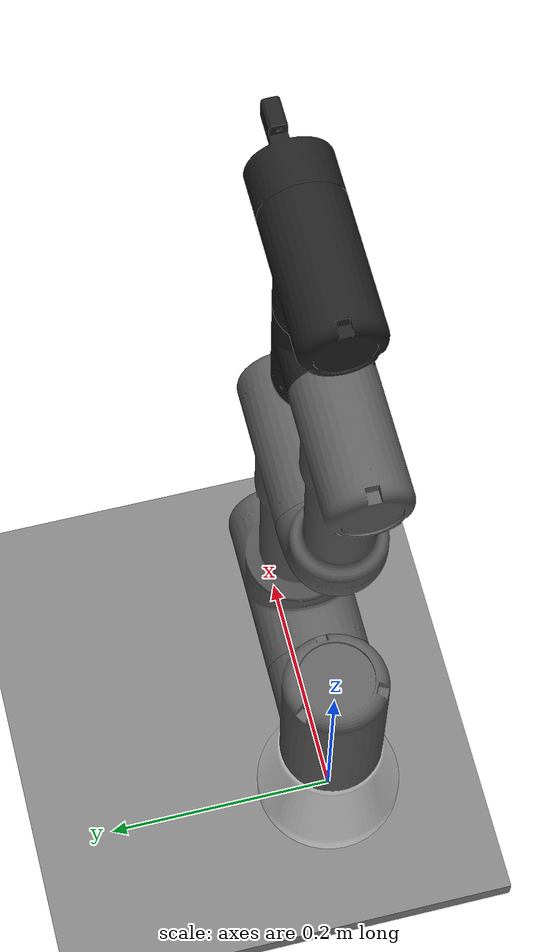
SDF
<?xml version="1.0" ?>
<sdf version='1.7'>
  <world name='world_demo'>
    <physics name="1ms" type="ode">
      <max_step_size>0.001</max_step_size>
      <real_time_factor>1.0</real_time_factor>
    </physics>
    <plugin
      filename="gz-sim-physics-system"
      name="gz::sim::systems::Physics">
    </plugin>
    <plugin
      filename="gz-sim-user-commands-system"
      name="gz::sim::systems::UserCommands">
    </plugin>
    <plugin
      filename="gz-sim-scene-broadcaster-system"
      name="gz::sim::systems::SceneBroadcaster">
    </plugin>

    <gui fullscreen="0">

      <!-- 3D scene -->
      <plugin filename="MinimalScene" name="3D View">
        <gz-gui>
          <title>3D View</title>
          <property type="bool" key="showTitleBar">false</property>
          <property type="string" key="state">docked</property>
        </gz-gui>

        <engine>ogre2</engine>
        <scene>scene</scene>
        <ambient_light>0.5 0.5 0.5</ambient_light>
        <background_color>0.8 0.8 0.8</background_color>
        <camera_pose>-4.0 -4.0 2.5 0 0.4 0.8</camera_pose>
        <camera_clip>
          <near>0.01</near>
          <far>5000</far>
        </camera_clip>
      </plugin>
      <plugin filename="GzSceneManager" name="Scene Manager">
        <gz-gui>
          <property key="resizable" type="bool">false</property>
          <property key="width" type="double">5</property>
          <property key="height" type="double">5</property>
          <property key="state" type="string">floating</property>
          <property key="showTitleBar" type="bool">false</property>
        </gz-gui>
      </plugin>

      <!-- World control -->
      <plugin filename="WorldControl" name="World control">
        <gz-gui>
          <title>World control</title>
          <property type="bool" key="showTitleBar">false</property>
          <property type="bool" key="resizable">false</property>
          <property type="double" key="height">72</property>
          <property type="double" key="width">121</property>
          <property type="double" key="z">1</property>

          <property type="string" key="state">floating</property>
          <anchors target="3D View">
          <line own="left" target="left"/>
          <line own="bottom" target="bottom"/>
          </anchors>
        </gz-gui>

        <play_pause>true</play_pause>
        <step>true</step>
        <start_paused>false</start_paused>
        <service>/world/world_demo/control</service>
        <stats_topic>/world/world_demo/stats</stats_topic>
      </plugin>

      <!-- World statistics -->
      <plugin filename="WorldStats" name="World stats">
        <gz-gui>
          <title>World stats</title>
          <property type="bool" key="showTitleBar">false</property>
          <property type="bool" key="resizable">false</property>
          <property type="double" key="height">110</property>
          <property type="double" key="width">290</property>
          <property type="double" key="z">1</property>

          <property type="string" key="state">floating</property>
          <anchors target="3D View">
          <line own="right" target="right"/>
          <line own="bottom" target="bottom"/>
          </anchors>
        </gz-gui>
        <sim_time>true</sim_time>
        <real_time>true</real_time>
        <real_time_factor>true</real_time_factor>
        <iterations>true</iterations>
        <topic>/world/world_demo/stats</topic>

      </plugin>

      <!-- Toolbar (required for camera controls) -->
      <plugin filename="InteractiveViewControl" name="View Angle">
        <gz-gui>
          <title>View Angle</title>
          <property type="bool" key="showTitleBar">false</property>
          <property type="string" key="state">docked</property>
        </gz-gui>
      </plugin>

      <!-- Display Transform Control Toolbar -->
      <plugin filename="TransformControl" name="Transform Control">
        <gz-gui>
          <property type="bool" key="showTitleBar">false</property>
         <property type="string" key="state">docked</property>
        </gz-gui>
      </plugin>

      <!-- Entity tree -->
      <plugin filename="EntityTree" name="Entity tree">
      </plugin>

      <!--using keyboard to control arm-->
      <plugin filename="KeyPublisher" name="Key Publisher"/>
    </gui>

    <!--Light-->
    <light type="directional" name="sun">
      <cast_shadows>true</cast_shadows>
      <pose>0 0 10 0 0 0</pose>
      <diffuse>0.8 0.8 0.8 1</diffuse>
      <specular>0.2 0.2 0.2 1</specular>
      <attenuation>
        <range>1000</range>
        <constant>0.9</constant>
        <linear>0.01</linear>
        <quadratic>0.001</quadratic>
      </attenuation>
      <direction>-0.5 0.1 -0.9</direction>
    </light>

    <!--Build a ground plane-->
    <model name='ground_plane'>
      <static>true</static>
      <pose>0 0 -0.01 0 0 0</pose> <link name='link'>
        <collision name='collision'>
          <geometry>
             <box>
              <size>20 20 0.02</size> </box>
          </geometry>
        </collision>
        <visual name='visual'>
          <geometry>
            <box>
              <size>20 20 0.02</size>
            </box>
          </geometry>
          <material>
            <ambient>0.5 0.5 0.5 1</ambient>
            <diffuse>0.5 0.5 0.5 1</diffuse>
          </material>
         </visual>
      </link>
    </model>

      <!--Robot itself-->
    <model name='UR3_Assembly_URDF'>

	    <joint name='fixed_base_joint' type='fixed'> <!--double check this joint-->
        <pose relative_to='__model__'>0 0 0 0 0 0</pose>
        <parent>world</parent>
        <child>base_link</child>
      </joint>

      <link name='base_link'>
        <inertial>
          <pose>0 -4.4408920985006301e-16 0.047576249398130099 0 0 0</pose>
          <mass>2.6514504391646798</mass>
          <inertia>
            <ixx>0.00437179269564763</ixx>
            <ixy>-3.85185988877447e-34</ixy>
            <ixz>-5.8778619151101097e-23</ixz>
            <iyy>0.00437179269564763</iyy>
            <iyz>3.8514866752464201e-19</iyz>
            <izz>0.0043848087297314103</izz>
          </inertia>
        </inertial>
        <collision name='base_link_collision'>
          <pose>0 0 0 0 0 0</pose>
          <geometry>
            <mesh>
              <scale>1 1 1</scale>
              <uri>package:///home/user/car_spraying_ws/src/car_spraying_robot/meshes/base_link.stl</uri>
            </mesh>
          </geometry>
        </collision>
        <visual name='base_link_visual'>
          <pose>0 0 0 0 0 0</pose>
          <geometry>
            <mesh>
              <scale>1 1 1</scale>
              <uri>package:///home/user/car_spraying_ws/src/car_spraying_robot/meshes/base_link.stl</uri>
            </mesh>
          </geometry>
          <material>
            <diffuse>1 1 1 1</diffuse>
            <ambient>1 1 1 1</ambient>
          </material>
        </visual>
      </link>
      <joint name='joint_0' type='revolute'>
        <pose relative_to='base_link'>0 0 0.10580000000000001 0 0 0</pose>
        <parent>base_link</parent>
        <child>link_1</child>
        <axis>
          <xyz>0 0 1</xyz>
          <limit>
            <lower>-3.14</lower>
            <upper>3.14</upper>
            <effort>35</effort>
            <velocity>1.5</velocity>
          </limit>
          <dynamics>
            <spring_reference>0</spring_reference>
            <spring_stiffness>0</spring_stiffness>
          </dynamics>
        </axis>
      </joint>
      <plugin
     name="gz::sim::systems::JointPositionController"
     filename="gz-sim-joint-position-controller-system">
      <!-- gz-sim-joint-position-controller-system handles:
        Topic Subscriptions, PID, Motion Control  -->
        <joint_name>joint_0</joint_name>
        <topic>/joint_0/position_cmd</topic>
        <p_gain>2000</p_gain>
	      <i_gain>0.1</i_gain>
	      <d_gain>50</d_gain>
      </plugin>

      <link name='link_1'>
        <pose relative_to='joint_0'>0 0 0 0 0 0</pose>
        <inertial>
          <pose>0.0051135862154434398 -4.4893697648262804e-09 0.063179880887965001 0 0 0</pose>
          <mass>0.80599855297885203</mass>
          <inertia>
            <ixx>0.0013206547966630299</ixx>
            <ixy>4.4061962049193298e-10</ixy>
            <ixz>-1.7219218437347999e-05</ixz>
            <iyy>0.00142111571223347</iyy>
            <iyz>1.2940043194443099e-10</iyz>
            <izz>0.00096650730830554095</izz>
          </inertia>
        </inertial>
        <collision name='link_1_collision'>
          <pose>0 0 0 0 0 0</pose>
          <geometry>
            <mesh>
              <scale>1 1 1</scale>
              <uri>package:///home/user/car_spraying_ws/src/car_spraying_robot/meshes/link_1.stl</uri>
            </mesh>
          </geometry>
        </collision>
        <visual name='link_1_visual'>
          <pose>0 0 0 0 0 0</pose>
          <geometry>
            <mesh>
              <scale>1 1 1</scale>
              <uri>package:///home/user/car_spraying_ws/src/car_spraying_robot/meshes/link_1.stl</uri>
            </mesh>
          </geometry>
          <material>
            <diffuse>0.372549027 0.372549027 0.372549027 1</diffuse>
            <ambient>0.372549027 0.372549027 0.372549027 1</ambient>
          </material>
        </visual>
      </link>
      <joint name='joint_1' type='revolute'>
        <pose relative_to='link_1'>0.055000000000000597 0 0.065999999999999906 1.5707963267949003 5.5511151231257827e-17 -1.5707963267949003</pose>
        <parent>link_1</parent>
        <child>link_2</child>
        <axis>
          <xyz>0 0 1</xyz>
          <limit>
            <lower>-3.14</lower>
            <upper>3.14</upper>
            <effort>35</effort>
            <velocity>1.5</velocity>
          </limit>
          <dynamics>
            <spring_reference>0</spring_reference>
            <spring_stiffness>0</spring_stiffness>
          </dynamics>
        </axis>
      </joint>

      <plugin
    name="gz::sim::systems::JointPositionController"
    filename="gz-sim-joint-position-controller-system">
        <joint_name>joint_1</joint_name>
        <topic>/joint_1/position_cmd</topic>
        <p_gain>2000</p_gain>
	      <i_gain>0.1</i_gain>
	      <d_gain>50</d_gain>
      </plugin>

      <link name='link_2'>
        <pose relative_to='joint_1'>0 0 0 0 0 0</pose>
        <inertial>
          <pose>4.25462332032112e-10 0.112619000509759 -0.069311980854205799 0 0 0</pose>
          <mass>2.8455664040750701</mass>
          <inertia>
            <ixx>0.0058537691504215996</ixx>
            <ixy>6.5781848149650896e-10</ixy>
            <ixz>-6.7615934400463402e-11</ixz>
            <iyy>0.0029568682326097401</iyy>
            <iyz>2.1932095980722101e-05</iyz>
            <izz>0.0050912983881171402</izz>
          </inertia>
        </inertial>
        <collision name='link_2_collision'>
          <pose>0 0 0 0 0 0</pose>
          <geometry>
            <mesh>
              <scale>1 1 1</scale>
              <uri>package:///home/user/car_spraying_ws/src/car_spraying_robot/meshes/link_2.stl</uri>
            </mesh>
          </geometry>
        </collision>
        <visual name='link_2_visual'>
          <pose>0 0 0 0 0 0</pose>
          <geometry>
            <mesh>
              <scale>1 1 1</scale>
              <uri>package:///home/user/car_spraying_ws/src/car_spraying_robot/meshes/link_2.stl</uri>
            </mesh>
          </geometry>
          <material>
            <diffuse>0.372549027 0.372549027 0.372549027 1</diffuse>
            <ambient>0.372549027 0.372549027 0.372549027 1</ambient>
          </material>
        </visual>
      </link>
      <joint name='joint_2' type='revolute'>
        <pose relative_to='link_2'>0 0.255 -0.015999999999999601 0 0 1.5707963267949003</pose>
        <parent>link_2</parent>
        <child>link_3</child>
        <axis>
          <xyz>0 0 1</xyz>
          <limit>
            <lower>-3.14</lower>
            <upper>3.14</upper>
            <effort>10</effort>
            <velocity>2</velocity>
          </limit>
          <dynamics>
            <spring_reference>0</spring_reference>
            <spring_stiffness>0</spring_stiffness>
          </dynamics>
        </axis>
      </joint>

      <plugin
    name="gz::sim::systems::JointPositionController"
    filename="gz-sim-joint-position-controller-system">
        <joint_name>joint_2</joint_name>
        <topic>/joint_2/position_cmd</topic>
        <p_gain>2000</p_gain>
	      <i_gain>0.1</i_gain>
	      <d_gain>50</d_gain>
      </plugin>

      <link name='link_3'>
        <pose relative_to='joint_2'>0 0 0 0 0 0</pose>
        <inertial>
          <pose>0.115582187515874 3.7597396307376097e-09 0.047877780898351902 0 0 0</pose>
          <mass>1.5490639003480999</mass>
          <inertia>
            <ixx>0.00090639954169275804</ixx>
            <ixy>5.9464801384745095e-10</ixy>
            <ixz>-5.8943171541064503e-05</ixz>
            <iyy>0.0023187378831417702</iyy>
            <iyz>1.8360356982654398e-11</iyz>
            <izz>0.002197605373301</izz>
          </inertia>
        </inertial>
        <collision name='link_3_collision'>
          <pose>0 0 0 0 0 0</pose>
          <geometry>
            <mesh>
              <scale>1 1 1</scale>
              <uri>package:///home/user/car_spraying_ws/src/car_spraying_robot/meshes/link_3.stl</uri>
            </mesh>
          </geometry>
        </collision>
        <visual name='link_3_visual'>
          <pose>0 0 0 0 0 0</pose>
          <geometry>
            <mesh>
              <scale>1 1 1</scale>
              <uri>package:///home/user/car_spraying_ws/src/car_spraying_robot/meshes/link_3.stl</uri>
            </mesh>
          </geometry>
          <material>
            <diffuse>0.372549027 0.372549027 0.372549027 1</diffuse>
            <ambient>0.372549027 0.372549027 0.372549027 1</ambient>
          </material>
        </visual>
      </link>
      <joint name='joint_3' type='revolute'>
        <pose relative_to='link_3'>0.22450000000000001 0 0.0070000000000001198 -3.14159265358979 0 0</pose>
        <parent>link_3</parent>
        <child>link_4</child>
        <axis>
          <xyz>0 0 1</xyz>
          <limit>
            <lower>-3.14</lower>
            <upper>3.14</upper>
            <effort>10</effort>
            <velocity>2</velocity>
          </limit>
          <dynamics>
            <spring_reference>0</spring_reference>
            <spring_stiffness>0</spring_stiffness>
          </dynamics>
        </axis>
      </joint>

      <plugin
    name="gz::sim::systems::JointPositionController"
    filename="gz-sim-joint-position-controller-system">
        <joint_name>joint_3</joint_name>
        <topic>/joint_3/position_cmd</topic>
        <p_gain>2000</p_gain>
	      <i_gain>0.1</i_gain>
	      <d_gain>50</d_gain>
      </plugin>

      <link name='link_4'>
        <pose relative_to='joint_3'>0 0 0 0 0 0</pose>
        <inertial>
          <pose>-0.00250614919525627 1.9986776678138102e-09 0.036195883903732601 0 0 0</pose>
          <mass>0.30592412248425099</mass>
          <inertia>
            <ixx>0.00019256180376239399</ixx>
            <ixy>2.03197911773492e-11</ixy>
            <ixz>1.2865620793401399e-06</ixz>
            <iyy>0.00028193000710771601</iyy>
            <iyz>6.7479130275890594e-11</iyz>
            <izz>0.000261214129591347</izz>
          </inertia>
        </inertial>
        <collision name='link_4_collision'>
          <pose>0 0 0 0 0 0</pose>
          <geometry>
            <mesh>
              <scale>1 1 1</scale>
              <uri>package:///home/user/car_spraying_ws/src/car_spraying_robot/meshes/link_4.stl</uri>
            </mesh>
          </geometry>
        </collision>
        <visual name='link_4_visual'>
          <pose>0 0 0 0 0 0</pose>
          <geometry>
            <mesh>
              <scale>1 1 1</scale>
              <uri>package:///home/user/car_spraying_ws/src/car_spraying_robot/meshes/link_4.stl</uri>
            </mesh>
          </geometry>
          <material>
            <diffuse>0.127450988 0.127450988 0.127450988 1</diffuse>
            <ambient>0.127450988 0.127450988 0.127450988 1</ambient>
          </material>
        </visual>
      </link>
      <joint name='joint_4' type='revolute'>
        <pose relative_to='link_4'>0.042999999999999997 0 0.040500000000000203 1.5707963267949003 -5.5511151231257827e-17 1.5707963267949003</pose>
        <parent>link_4</parent>
        <child>link_5</child>
        <axis>
          <xyz>0 0 1</xyz>
          <limit>
            <lower>-3.14</lower>
            <upper>3.14</upper>
            <effort>10</effort>
            <velocity>2</velocity>
          </limit>
          <dynamics>
            <spring_reference>0</spring_reference>
            <spring_stiffness>0</spring_stiffness>
          </dynamics>
        </axis>
      </joint>

      <plugin
    name="gz::sim::systems::JointPositionController"
    filename="gz-sim-joint-position-controller-system">
        <joint_name>joint_4</joint_name>
        <topic>/joint_4/position_cmd</topic>
        <p_gain>2000</p_gain>
	      <i_gain>0.1</i_gain>
	      <d_gain>50</d_gain>
      </plugin>

      <link name='link_5'>
        <pose relative_to='joint_4'>0 0 0 0 0 0</pose>
        <inertial>
          <pose>-3.0539069051371801e-09 0.00190124611504094 0.0365748109896381 0 0 0</pose>
          <mass>0.33545705692010602</mass>
          <inertia>
            <ixx>0.000353929483232228</ixx>
            <ixy>-2.6343744776887e-11</ixy>
            <ixz>-9.1711257278252205e-11</ixz>
            <iyy>0.000208608865865198</iyy>
            <iyz>-4.0576736704203102e-06</iyz>
            <izz>0.00033276362468715202</izz>
          </inertia>
        </inertial>
        <collision name='link_5_collision'>
          <pose>0 0 0 0 0 0</pose>
          <geometry>
            <mesh>
              <scale>1 1 1</scale>
              <uri>package:///home/user/car_spraying_ws/src/car_spraying_robot/meshes/link_5.stl</uri>
            </mesh>
          </geometry>
        </collision>
        <visual name='link_5_visual'>
          <pose>0 0 0 0 0 0</pose>
          <geometry>
            <mesh>
              <scale>1 1 1</scale>
              <uri>package:///home/user/car_spraying_ws/src/car_spraying_robot/meshes/link_5.stl</uri>
            </mesh>
          </geometry>
          <material>
            <diffuse>0.127450988 0.127450988 0.127450988 1</diffuse>
            <ambient>0.127450988 0.127450988 0.127450988 1</ambient>
          </material>
        </visual>
      </link>
      <joint name='joint_5' type='revolute'>
        <pose relative_to='link_5'>0 0.053000000000000803 0.0404999999999998 -1.5707963267949003 0 0</pose>
        <parent>link_5</parent>
        <child>link_6</child>
        <axis>
          <xyz>0 0 -1</xyz>
          <limit>
            <lower>-3.14</lower>
            <upper>3.14</upper>
            <effort>10</effort>
            <velocity>2</velocity>
          </limit>
          <dynamics>
            <spring_reference>0</spring_reference>
            <spring_stiffness>0</spring_stiffness>
          </dynamics>
        </axis>
      </joint>

      <plugin
    name="gz::sim::systems::JointPositionController"
    filename="gz-sim-joint-position-controller-system">
        <joint_name>joint_5</joint_name>
        <topic>/joint_5/position_cmd</topic>
        <p_gain>2000</p_gain>
	      <i_gain>0.1</i_gain>
	      <d_gain>50</d_gain>
      </plugin>

      <link name='link_6'>
        <pose relative_to='joint_5'>0 0 0 0 0 0</pose>
        <inertial>
          <pose>-3.1086244689504399e-15 0.00071908520638130902 0.019083861771335801 0 0 0</pose>
          <mass>0.32019667334485702</mass>
          <inertia>
            <ixx>0.00011646073524573</ixx>
            <ixy>3.2444412836329997e-20</ixy>
            <ixz>-5.9770531959501001e-20</ixz>
            <iyy>0.000114323636606439</iyy>
            <iyz>2.1268307275844302e-06</iyz>
            <izz>0.00016425413209485899</izz>
          </inertia>
        </inertial>
        <collision name='link_6_collision'>
          <pose>0 0 0 0 0 0</pose>
          <geometry>
            <mesh>
              <scale>1 1 1</scale>
              <uri>package:///home/user/car_spraying_ws/src/car_spraying_robot/meshes/link_6.stl</uri>
            </mesh>
          </geometry>
        </collision>
        <visual name='link_6_visual'>
          <pose>0 0 0 0 0 0</pose>
          <geometry>
            <mesh>
              <scale>1 1 1</scale>
              <uri>package:///home/user/car_spraying_ws/src/car_spraying_robot/meshes/link_6.stl</uri>
            </mesh>
          </geometry>
          <material>
            <diffuse>0.127450988 0.127450988 0.127450988 1</diffuse>
            <ambient>0.127450988 0.127450988 0.127450988 1</ambient>
          </material>
        </visual>
      </link>
      <plugin
        filename="gz-sim-joint-state-publisher-system"
        name="gz::sim::systems::JointStatePublisher">
          <joint_name>joint_0</joint_name>
          <joint_name>joint_1</joint_name>
          <joint_name>joint_2</joint_name>
          <joint_name>joint_3</joint_name>
          <joint_name>joint_4</joint_name>
          <joint_name>joint_5</joint_name>
          <update_rate>100</update_rate>
          <topic>/world/world_demo/joint_state</topic>
      </plugin>
    </model>
  </world>
</sdf>
